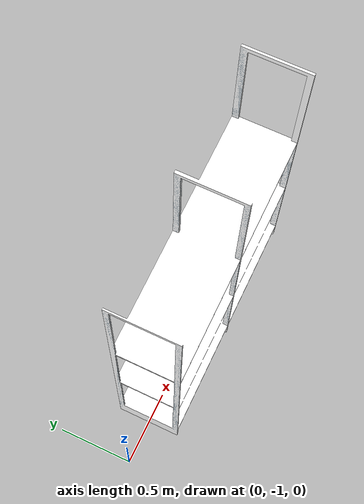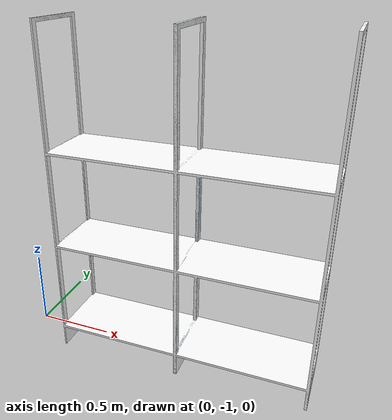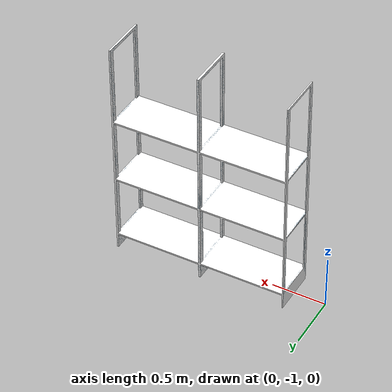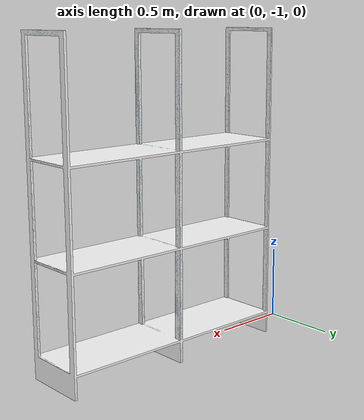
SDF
<?xml version="1.0" ?>
<sdf version="1.6">
  <model name="regal">
    <static>true</static>
    <link name="link">
      <collision name="collision">
        <geometry>
          <mesh>
            <scale>0.4 0.7 0.7</scale>
            <uri>model://regal/meshes/regal.dae</uri>
          </mesh>
        </geometry>
      </collision>
      <visual name="visual">
        <geometry>
          <mesh>
            <scale>0.4 0.7 0.7</scale>
            <uri>model://regal/meshes/regal.dae</uri>
          </mesh>
        </geometry>
      </visual>
    </link>
  </model>
</sdf>
